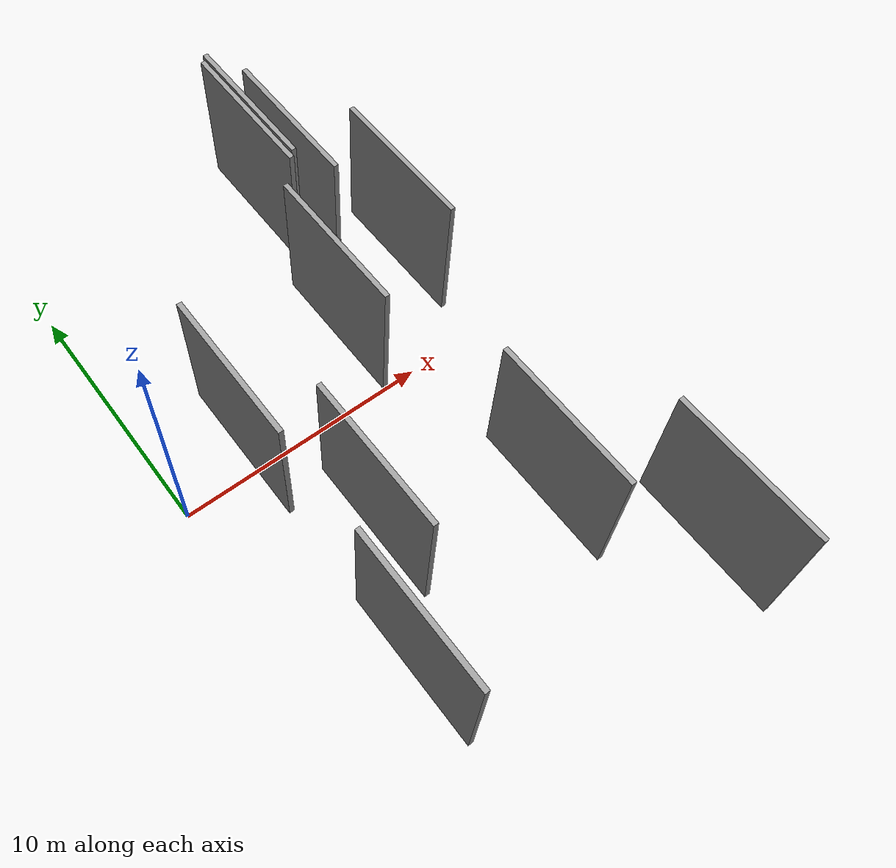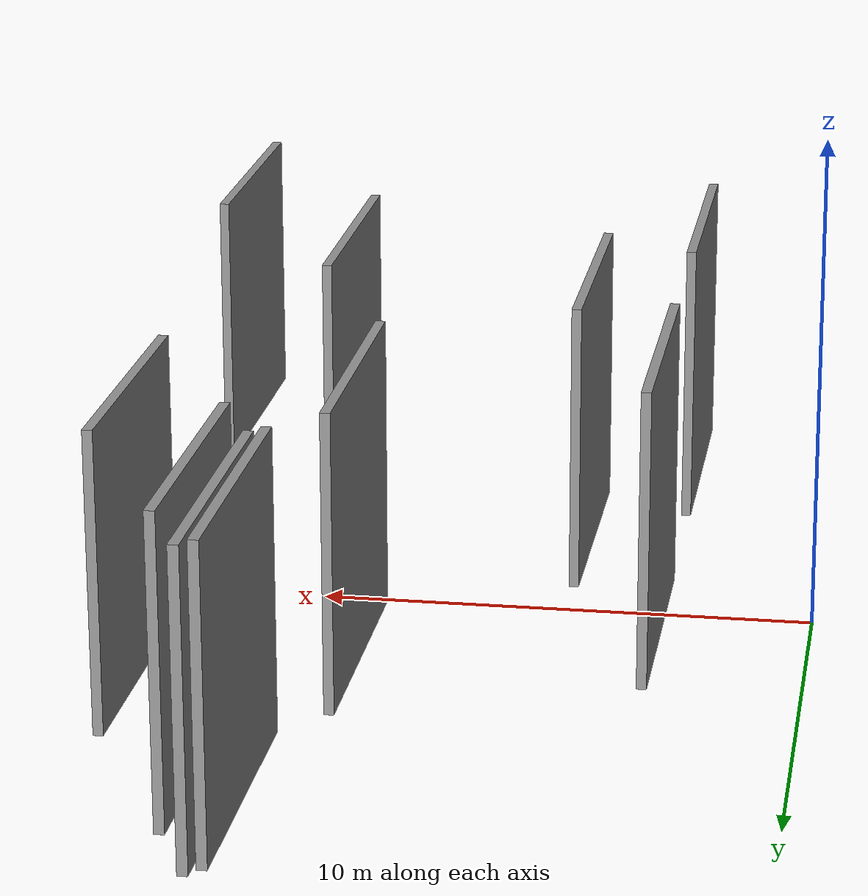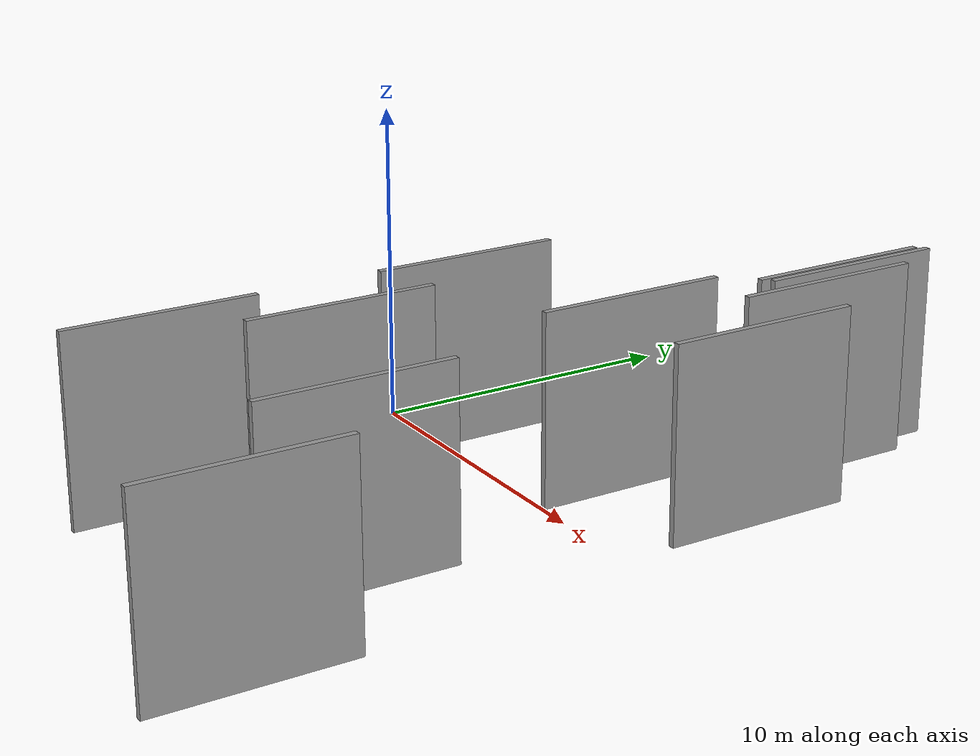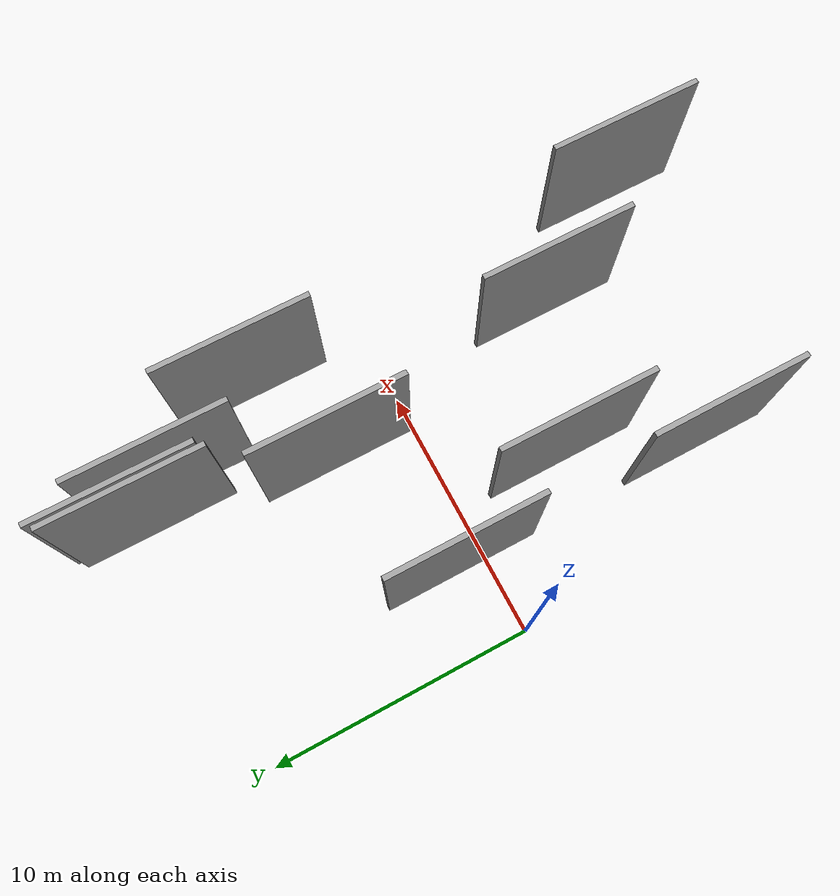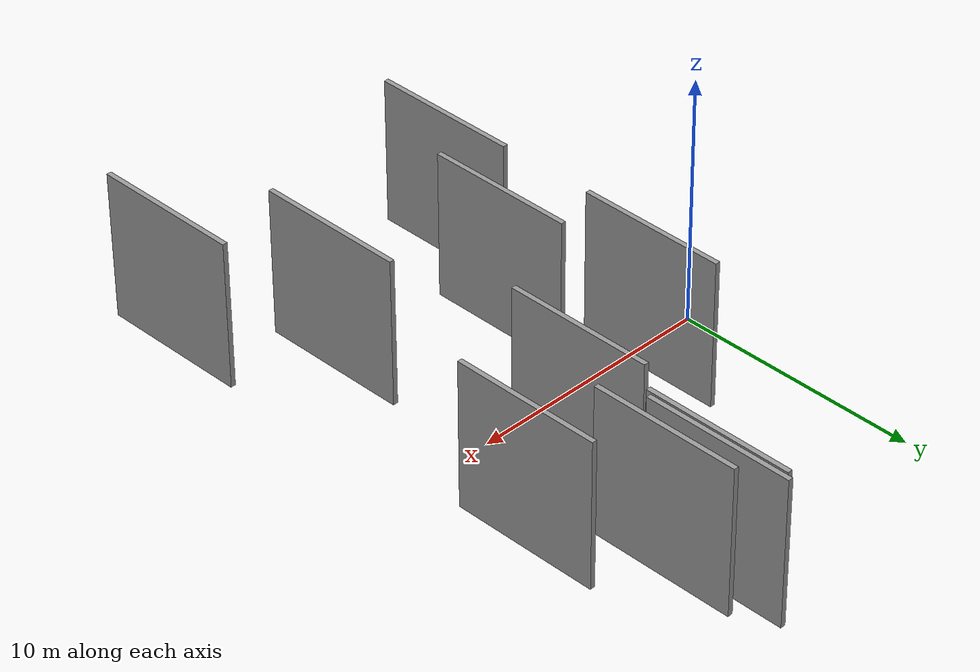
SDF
<sdf version="1.6">
 <world name="default">
  <scene>
   <sky><clouds><speed>12</speed></clouds></sky>
   <ambient>0.4 0.4 0.4 1</ambient>
   <background>0.7 0.7 0.7 1</background>
   <shadows>1</shadows>
  </scene>
  <gravity>0 0 -9.8066</gravity>
  <magnetic_field>6e-06 2.3e-05 -4.2e-05</magnetic_field>
  <physics default="0" name="default_physics" type="ode">
   <ode>
    <solver>
     <type>quick</type>
     <iters>10</iters>
     <sor>1.0</sor>
     <use_dynamic_moi_rescaling>0</use_dynamic_moi_rescaling>
    </solver>
    <constraints>
     <cfm>0</cfm>
     <erp>0.2</erp>
     <contact_max_correcting_vel>100</contact_max_correcting_vel>
     <contact_surface_layer>0.001</contact_surface_layer>
    </constraints>
   </ode>
   <max_step_size>0.004</max_step_size>
   <real_time_factor>1</real_time_factor>
   <real_time_update_rate>250</real_time_update_rate>
  </physics>
  <light name="sun" type="directional">
   <pose>0 0 10 0 0 0</pose>
   <diffuse>0.8 0.8 0.8 1</diffuse>
   <specular>0.2 0.2 0.2 1</specular>
   <attenuation>
    <range>1000</range>
    <constant>0.9</constant>
    <linear>0.01</linear>
    <quadratic>0.001</quadratic>
   </attenuation>
   <direction>-0.5 0.1 -0.9</direction>
  </light>
  <model name="grey_wall_1">
   <static>1</static>
   <pose>9.6805 9.9893 0.0 0.000000 0.000000 1.570796</pose>
   <link name="link">
    <pose>0 0 3.00 0 0 0</pose>
    <collision name="collision"><geometry><box><size>6.00 0.2 6.00</size></box></geometry></collision>
    <visual name="visual">
     <cast_shadows>0</cast_shadows>
     <geometry><box><size>6.00 0.2 6.00</size></box></geometry>
     <material>
      <script>
       <uri>model://grey_wall/materials/scripts</uri>
       <uri>model://grey_wall/materials/textures</uri>
       <name>vrc/grey_wall</name>
      </script>
     </material>
    </visual>
   </link>
  </model>
  <model name="grey_wall_2">
   <static>1</static>
   <pose>9.9567 10.2613 0.0 0.000000 0.000000 1.570796</pose>
   <link name="link">
    <pose>0 0 3.00 0 0 0</pose>
    <collision name="collision"><geometry><box><size>6.00 0.2 6.00</size></box></geometry></collision>
    <visual name="visual">
     <cast_shadows>0</cast_shadows>
     <geometry><box><size>6.00 0.2 6.00</size></box></geometry>
     <material>
      <script>
       <uri>model://grey_wall/materials/scripts</uri>
       <uri>model://grey_wall/materials/textures</uri>
       <name>vrc/grey_wall</name>
      </script>
     </material>
    </visual>
   </link>
  </model>
  <model name="grey_wall_3">
   <static>1</static>
   <pose>12.8511 4.6714 0.0 0.000000 0.000000 1.570796</pose>
   <link name="link">
    <pose>0 0 3.00 0 0 0</pose>
    <collision name="collision"><geometry><box><size>6.00 0.2 6.00</size></box></geometry></collision>
    <visual name="visual">
     <cast_shadows>0</cast_shadows>
     <geometry><box><size>6.00 0.2 6.00</size></box></geometry>
     <material>
      <script>
       <uri>model://grey_wall/materials/scripts</uri>
       <uri>model://grey_wall/materials/textures</uri>
       <name>vrc/grey_wall</name>
      </script>
     </material>
    </visual>
   </link>
  </model>
  <model name="grey_wall_4">
   <static>1</static>
   <pose>3.0643 0.9653 0.0 0.000000 0.000000 1.570796</pose>
   <link name="link">
    <pose>0 0 3.00 0 0 0</pose>
    <collision name="collision"><geometry><box><size>6.00 0.2 6.00</size></box></geometry></collision>
    <visual name="visual">
     <cast_shadows>0</cast_shadows>
     <geometry><box><size>6.00 0.2 6.00</size></box></geometry>
     <material>
      <script>
       <uri>model://grey_wall/materials/scripts</uri>
       <uri>model://grey_wall/materials/textures</uri>
       <name>vrc/grey_wall</name>
      </script>
     </material>
    </visual>
   </link>
  </model>
  <model name="grey_wall_5">
   <static>1</static>
   <pose>8.7816 3.0751 0.0 0.000000 0.000000 1.570796</pose>
   <link name="link">
    <pose>0 0 3.00 0 0 0</pose>
    <collision name="collision"><geometry><box><size>6.00 0.2 6.00</size></box></geometry></collision>
    <visual name="visual">
     <cast_shadows>0</cast_shadows>
     <geometry><box><size>6.00 0.2 6.00</size></box></geometry>
     <material>
      <script>
       <uri>model://grey_wall/materials/scripts</uri>
       <uri>model://grey_wall/materials/textures</uri>
       <name>vrc/grey_wall</name>
      </script>
     </material>
    </visual>
   </link>
  </model>
  <model name="grey_wall_6">
   <static>1</static>
   <pose>10.6095 -6.8160 0.0 0.000000 0.000000 1.570796</pose>
   <link name="link">
    <pose>0 0 3.00 0 0 0</pose>
    <collision name="collision"><geometry><box><size>6.00 0.2 6.00</size></box></geometry></collision>
    <visual name="visual">
     <cast_shadows>0</cast_shadows>
     <geometry><box><size>6.00 0.2 6.00</size></box></geometry>
     <material>
      <script>
       <uri>model://grey_wall/materials/scripts</uri>
       <uri>model://grey_wall/materials/textures</uri>
       <name>vrc/grey_wall</name>
      </script>
     </material>
    </visual>
   </link>
  </model>
  <model name="grey_wall_7">
   <static>1</static>
   <pose>10.7295 8.7060 0.0 0.000000 0.000000 1.570796</pose>
   <link name="link">
    <pose>0 0 3.00 0 0 0</pose>
    <collision name="collision"><geometry><box><size>6.00 0.2 6.00</size></box></geometry></collision>
    <visual name="visual">
     <cast_shadows>0</cast_shadows>
     <geometry><box><size>6.00 0.2 6.00</size></box></geometry>
     <material>
      <script>
       <uri>model://grey_wall/materials/scripts</uri>
       <uri>model://grey_wall/materials/textures</uri>
       <name>vrc/grey_wall</name>
      </script>
     </material>
    </visual>
   </link>
  </model>
  <model name="grey_wall_8">
   <static>1</static>
   <pose>3.0692 -8.9980 0.0 0.000000 0.000000 1.570796</pose>
   <link name="link">
    <pose>0 0 3.00 0 0 0</pose>
    <collision name="collision"><geometry><box><size>6.00 0.2 6.00</size></box></geometry></collision>
    <visual name="visual">
     <cast_shadows>0</cast_shadows>
     <geometry><box><size>6.00 0.2 6.00</size></box></geometry>
     <material>
      <script>
       <uri>model://grey_wall/materials/scripts</uri>
       <uri>model://grey_wall/materials/textures</uri>
       <name>vrc/grey_wall</name>
      </script>
     </material>
    </visual>
   </link>
  </model>
  <model name="grey_wall_9">
   <static>1</static>
   <pose>13.8510 -11.5107 0.0 0.000000 0.000000 1.570796</pose>
   <link name="link">
    <pose>0 0 3.00 0 0 0</pose>
    <collision name="collision"><geometry><box><size>6.00 0.2 6.00</size></box></geometry></collision>
    <visual name="visual">
     <cast_shadows>0</cast_shadows>
     <geometry><box><size>6.00 0.2 6.00</size></box></geometry>
     <material>
      <script>
       <uri>model://grey_wall/materials/scripts</uri>
       <uri>model://grey_wall/materials/textures</uri>
       <name>vrc/grey_wall</name>
      </script>
     </material>
    </visual>
   </link>
  </model>
  <model name="grey_wall_10">
   <static>1</static>
   <pose>4.9969 -4.3101 0.0 0.000000 0.000000 1.570796</pose>
   <link name="link">
    <pose>0 0 3.00 0 0 0</pose>
    <collision name="collision"><geometry><box><size>6.00 0.2 6.00</size></box></geometry></collision>
    <visual name="visual">
     <cast_shadows>0</cast_shadows>
     <geometry><box><size>6.00 0.2 6.00</size></box></geometry>
     <material>
      <script>
       <uri>model://grey_wall/materials/scripts</uri>
       <uri>model://grey_wall/materials/textures</uri>
       <name>vrc/grey_wall</name>
      </script>
     </material>
    </visual>
   </link>
  </model>
 </world>
</sdf>
